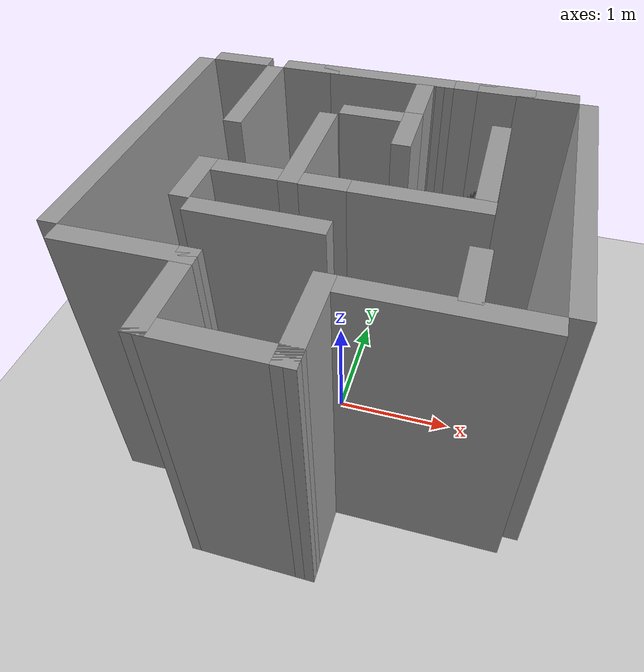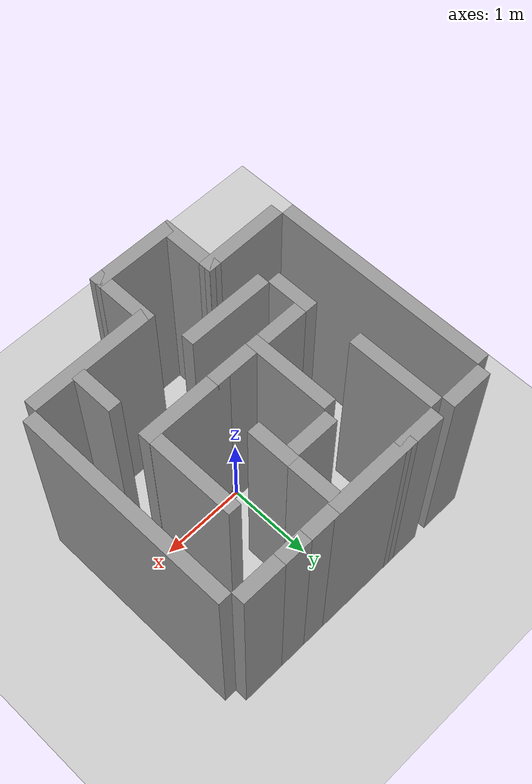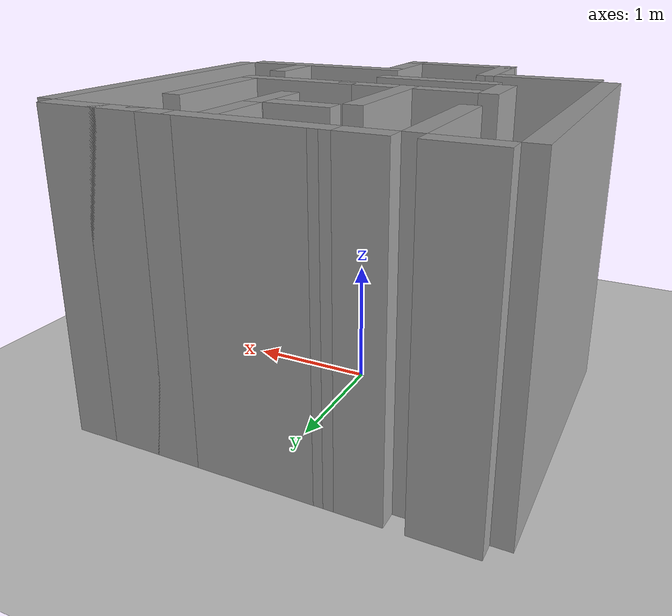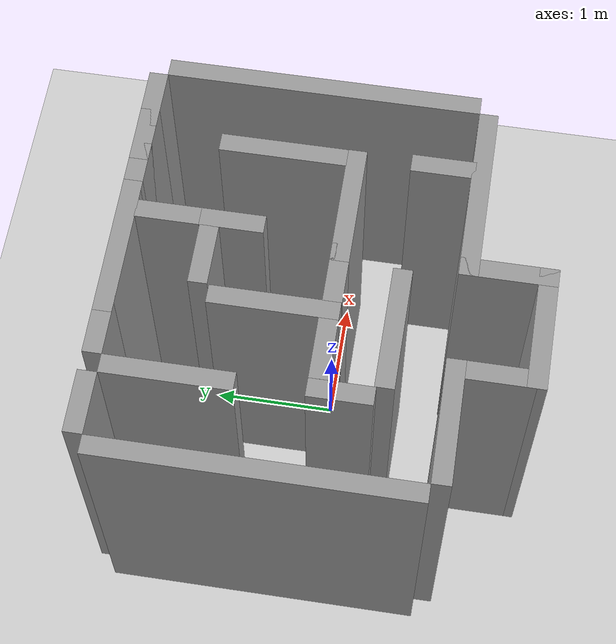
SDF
<?xml version="1.0"?>
<sdf version="1.6">
  <world name="default">

    <include>
      <uri>model://ground_plane</uri>
    </include>

    <include>
      <uri>model://sun</uri>
    </include>

    <scene>
      <shadows>false</shadows>
    </scene>

    <gui fullscreen='0'>
      <camera name='user_camera'>
        <pose frame=''>0.319654 -0.235002 9.29441 0 1.5138 0.009599</pose>
        <view_controller>orbit</view_controller>
        <projection_type>perspective</projection_type>
      </camera>
    </gui>

    <physics type="ode">
      <real_time_update_rate>1000.0</real_time_update_rate>
      <max_step_size>0.001</max_step_size>
      <real_time_factor>1</real_time_factor>
      <ode>
        <solver>
          <type>quick</type>
          <iters>150</iters>
          <precon_iters>0</precon_iters>
          <sor>1.400000</sor>
          <use_dynamic_moi_rescaling>1</use_dynamic_moi_rescaling>
        </solver>
        <constraints>
          <cfm>0.00001</cfm>
          <erp>0.2</erp>
          <contact_max_correcting_vel>2000.000000</contact_max_correcting_vel>
          <contact_surface_layer>0.01000</contact_surface_layer>
        </constraints>
      </ode>
    </physics>

    <model name="turtlebot3_world">
      <static>1</static>
      <include>
        <uri>model://assmaze</uri>
      </include>
    </model>

  </world>
</sdf>

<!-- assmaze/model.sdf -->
<sdf version='1.7'>
  <model name='assmaze'>
    <pose>-0.017206 0.018341 0 0 -0 0</pose>
    <link name='Wall_11'>
      <collision name='Wall_11_Collision'>
        <geometry>
          <box>
            <size>0.5 0.15 2.5</size>
          </box>
        </geometry>
        <pose>0 0 1.25 0 -0 0</pose>
      </collision>
      <visual name='Wall_11_Visual'>
        <pose>0 0 1.25 0 -0 0</pose>
        <geometry>
          <box>
            <size>0.5 0.15 2.5</size>
          </box>
        </geometry>
        <material>
          <script>
            <uri>file://media/materials/scripts/gazebo.material</uri>
            <name>Gazebo/Grey</name>
          </script>
          <ambient>1 1 1 1</ambient>
        </material>
        <meta>
          <layer>0</layer>
        </meta>
      </visual>
      <pose>-0.68782 1.62268 0 0 -0 0</pose>
    </link>
    <link name='Wall_13'>
      <collision name='Wall_13_Collision'>
        <geometry>
          <box>
            <size>0.5 0.15 2.5</size>
          </box>
        </geometry>
        <pose>0 0 1.25 0 -0 0</pose>
      </collision>
      <visual name='Wall_13_Visual'>
        <pose>0 0 1.25 0 -0 0</pose>
        <geometry>
          <box>
            <size>0.5 0.15 2.5</size>
          </box>
        </geometry>
        <material>
          <script>
            <uri>file://media/materials/scripts/gazebo.material</uri>
            <name>Gazebo/Grey</name>
          </script>
          <ambient>1 1 1 1</ambient>
        </material>
        <meta>
          <layer>0</layer>
        </meta>
      </visual>
      <pose>0.668086 1.62226 0 0 -0 0</pose>
    </link>
    <link name='Wall_15'>
      <collision name='Wall_15_Collision'>
        <geometry>
          <box>
            <size>0.5 0.15 2.5</size>
          </box>
        </geometry>
        <pose>0 0 1.25 0 -0 0</pose>
      </collision>
      <visual name='Wall_15_Visual'>
        <pose>0 0 1.25 0 -0 0</pose>
        <geometry>
          <box>
            <size>0.5 0.15 2.5</size>
          </box>
        </geometry>
        <material>
          <script>
            <uri>file://media/materials/scripts/gazebo.material</uri>
            <name>Gazebo/Grey</name>
          </script>
          <ambient>1 1 1 1</ambient>
        </material>
        <meta>
          <layer>0</layer>
        </meta>
      </visual>
      <pose>0.327442 1.3034 0 0 -0 -1.5708</pose>
    </link>
    <link name='Wall_17'>
      <collision name='Wall_17_Collision'>
        <geometry>
          <box>
            <size>0.5 0.15 2.5</size>
          </box>
        </geometry>
        <pose>0 0 1.25 0 -0 0</pose>
      </collision>
      <visual name='Wall_17_Visual'>
        <pose>0 0 1.25 0 -0 0</pose>
        <geometry>
          <box>
            <size>0.5 0.15 2.5</size>
          </box>
        </geometry>
        <material>
          <script>
            <uri>file://media/materials/scripts/gazebo.material</uri>
            <name>Gazebo/Grey</name>
          </script>
          <ambient>1 1 1 1</ambient>
        </material>
        <meta>
          <layer>0</layer>
        </meta>
      </visual>
      <pose>0.005043 0.970089 0 0 -0 3.14159</pose>
    </link>
    <link name='Wall_19'>
      <collision name='Wall_19_Collision'>
        <geometry>
          <box>
            <size>0.5 0.15 2.5</size>
          </box>
        </geometry>
        <pose>0 0 1.25 0 -0 0</pose>
      </collision>
      <visual name='Wall_19_Visual'>
        <pose>0 0 1.25 0 -0 0</pose>
        <geometry>
          <box>
            <size>0.5 0.15 2.5</size>
          </box>
        </geometry>
        <material>
          <script>
            <uri>file://media/materials/scripts/gazebo.material</uri>
            <name>Gazebo/Grey</name>
          </script>
          <ambient>1 1 1 1</ambient>
        </material>
        <meta>
          <layer>0</layer>
        </meta>
      </visual>
      <pose>0.327869 0.803785 0 0 -0 -1.5708</pose>
    </link>
    <link name='Wall_2'>
      <collision name='Wall_2_Collision'>
        <geometry>
          <box>
            <size>0.5 0.15 2.5</size>
          </box>
        </geometry>
        <pose>0 0 1.25 0 -0 0</pose>
      </collision>
      <visual name='Wall_2_Visual'>
        <pose>0 0 1.25 0 -0 0</pose>
        <geometry>
          <box>
            <size>0.5 0.15 2.5</size>
          </box>
        </geometry>
        <material>
          <script>
            <uri>file://media/materials/scripts/gazebo.material</uri>
            <name>Gazebo/Grey</name>
          </script>
          <ambient>1 1 1 1</ambient>
        </material>
        <meta>
          <layer>0</layer>
        </meta>
      </visual>
      <pose>-1.33617 1.62253 0 0 -0 0</pose>
    </link>
    <link name='Wall_21'>
      <collision name='Wall_21_Collision'>
        <geometry>
          <box>
            <size>2.5 0.15 2.5</size>
          </box>
        </geometry>
        <pose>0 0 1.25 0 -0 0</pose>
      </collision>
      <visual name='Wall_21_Visual'>
        <pose>0 0 1.25 0 -0 0</pose>
        <geometry>
          <box>
            <size>2.5 0.15 2.5</size>
          </box>
        </geometry>
        <material>
          <script>
            <uri>file://media/materials/scripts/gazebo.material</uri>
            <name>Gazebo/Grey</name>
          </script>
          <ambient>1 1 1 1</ambient>
        </material>
        <meta>
          <layer>0</layer>
        </meta>
      </visual>
      <pose>1.66156 0.30085 0 0 -0 -1.5708</pose>
    </link>
    <link name='Wall_23'>
      <collision name='Wall_23_Collision'>
        <geometry>
          <box>
            <size>1 0.15 2.5</size>
          </box>
        </geometry>
        <pose>0 0 1.25 0 -0 0</pose>
      </collision>
      <visual name='Wall_23_Visual'>
        <pose>0 0 1.25 0 -0 0</pose>
        <geometry>
          <box>
            <size>1 0.15 2.5</size>
          </box>
        </geometry>
        <material>
          <script>
            <uri>file://media/materials/scripts/gazebo.material</uri>
            <name>Gazebo/Grey</name>
          </script>
          <ambient>1 1 1 1</ambient>
        </material>
        <meta>
          <layer>0</layer>
        </meta>
      </visual>
      <pose>-0.324305 0.379872 0 0 -0 -1.5708</pose>
    </link>
    <link name='Wall_25'>
      <collision name='Wall_25_Collision'>
        <geometry>
          <box>
            <size>0.5 0.15 2.5</size>
          </box>
        </geometry>
        <pose>0 0 1.25 0 -0 0</pose>
      </collision>
      <visual name='Wall_25_Visual'>
        <pose>0 0 1.25 0 -0 0</pose>
        <geometry>
          <box>
            <size>0.5 0.15 2.5</size>
          </box>
        </geometry>
        <material>
          <script>
            <uri>file://media/materials/scripts/gazebo.material</uri>
            <name>Gazebo/Grey</name>
          </script>
          <ambient>1 1 1 1</ambient>
        </material>
        <meta>
          <layer>0</layer>
        </meta>
      </visual>
      <pose>1.05534 -0.724843 0 0 -0 -1.5708</pose>
    </link>
    <link name='Wall_27'>
      <collision name='Wall_27_Collision'>
        <geometry>
          <box>
            <size>0.5 0.15 2.5</size>
          </box>
        </geometry>
        <pose>0 0 1.25 0 -0 0</pose>
      </collision>
      <visual name='Wall_27_Visual'>
        <pose>0 0 1.25 0 -0 0</pose>
        <geometry>
          <box>
            <size>0.5 0.15 2.5</size>
          </box>
        </geometry>
        <material>
          <script>
            <uri>file://media/materials/scripts/gazebo.material</uri>
            <name>Gazebo/Grey</name>
          </script>
          <ambient>1 1 1 1</ambient>
        </material>
        <meta>
          <layer>0</layer>
        </meta>
      </visual>
      <pose>-0.973876 -0.21926 0 0 -0 -1.5708</pose>
    </link>
    <link name='Wall_30'>
      <collision name='Wall_30_Collision'>
        <geometry>
          <box>
            <size>0.5 0.15 2.5</size>
          </box>
        </geometry>
        <pose>0 0 1.25 0 -0 0</pose>
      </collision>
      <visual name='Wall_30_Visual'>
        <pose>0 0 1.25 0 -0 0</pose>
        <geometry>
          <box>
            <size>0.5 0.15 2.5</size>
          </box>
        </geometry>
        <material>
          <script>
            <uri>file://media/materials/scripts/gazebo.material</uri>
            <name>Gazebo/Grey</name>
          </script>
          <ambient>1 1 1 1</ambient>
        </material>
        <meta>
          <layer>0</layer>
        </meta>
      </visual>
      <pose>-0.648802 -0.04426 0 0 -0 0</pose>
    </link>
    <link name='Wall_32'>
      <collision name='Wall_32_Collision'>
        <geometry>
          <box>
            <size>1 0.15 2.5</size>
          </box>
        </geometry>
        <pose>0 0 1.25 0 -0 0</pose>
      </collision>
      <visual name='Wall_32_Visual'>
        <pose>0 0 1.25 0 -0 0</pose>
        <geometry>
          <box>
            <size>1 0.15 2.5</size>
          </box>
        </geometry>
        <material>
          <script>
            <uri>file://media/materials/scripts/gazebo.material</uri>
            <name>Gazebo/Grey</name>
          </script>
          <ambient>1 1 1 1</ambient>
        </material>
        <meta>
          <layer>0</layer>
        </meta>
      </visual>
      <pose>1.0216 0.522935 0 0 -0 -1.5708</pose>
    </link>
    <link name='Wall_34'>
      <collision name='Wall_34_Collision'>
        <geometry>
          <box>
            <size>0.5 0.15 2.5</size>
          </box>
        </geometry>
        <pose>0 0 1.25 0 -0 0</pose>
      </collision>
      <visual name='Wall_34_Visual'>
        <pose>0 0 1.25 0 -0 0</pose>
        <geometry>
          <box>
            <size>0.5 0.15 2.5</size>
          </box>
        </geometry>
        <material>
          <script>
            <uri>file://media/materials/scripts/gazebo.material</uri>
            <name>Gazebo/Grey</name>
          </script>
          <ambient>1 1 1 1</ambient>
        </material>
        <meta>
          <layer>0</layer>
        </meta>
      </visual>
      <pose>1.33765 1.62226 0 0 -0 0</pose>
    </link>
    <link name='Wall_38'>
      <collision name='Wall_38_Collision'>
        <geometry>
          <box>
            <size>0.5 0.15 2.5</size>
          </box>
        </geometry>
        <pose>0 0 1.25 0 -0 0</pose>
      </collision>
      <visual name='Wall_38_Visual'>
        <pose>0 0 1.25 0 -0 0</pose>
        <geometry>
          <box>
            <size>0.5 0.15 2.5</size>
          </box>
        </geometry>
        <material>
          <script>
            <uri>file://media/materials/scripts/gazebo.material</uri>
            <name>Gazebo/Grey</name>
          </script>
          <ambient>1 1 1 1</ambient>
        </material>
        <meta>
          <layer>0</layer>
        </meta>
      </visual>
      <pose>-0.001263 -0.049363 0 0 -0 0</pose>
    </link>
    <link name='Wall_40'>
      <collision name='Wall_40_Collision'>
        <geometry>
          <box>
            <size>0.469565 0.15 2.5</size>
          </box>
        </geometry>
        <pose>0 0 1.25 0 -0 0</pose>
      </collision>
      <visual name='Wall_40_Visual'>
        <pose>0 0 1.25 0 -0 0</pose>
        <geometry>
          <box>
            <size>0.469565 0.15 2.5</size>
          </box>
        </geometry>
        <material>
          <script>
            <uri>file://media/materials/scripts/gazebo.material</uri>
            <name>Gazebo/Grey</name>
          </script>
          <ambient>1 1 1 1</ambient>
        </material>
        <meta>
          <layer>0</layer>
        </meta>
      </visual>
      <pose>1.00287 1.62226 0 0 -0 0</pose>
    </link>
    <link name='Wall_43'>
      <collision name='Wall_43_Collision'>
        <geometry>
          <box>
            <size>1 0.15 2.5</size>
          </box>
        </geometry>
        <pose>0 0 1.25 0 -0 0</pose>
      </collision>
      <visual name='Wall_43_Visual'>
        <pose>0 0 1.25 0 -0 0</pose>
        <geometry>
          <box>
            <size>1 0.15 2.5</size>
          </box>
        </geometry>
        <material>
          <script>
            <uri>file://media/materials/scripts/gazebo.material</uri>
            <name>Gazebo/Grey</name>
          </script>
          <ambient>1 1 1 1</ambient>
        </material>
        <meta>
          <layer>0</layer>
        </meta>
      </visual>
      <pose>-0.398392 -0.530608 0 0 -0 -0.006493</pose>
    </link>
    <link name='Wall_45'>
      <collision name='Wall_45_Collision'>
        <geometry>
          <box>
            <size>1 0.15 2.5</size>
          </box>
        </geometry>
        <pose>0 0 1.25 0 -0 0</pose>
      </collision>
      <visual name='Wall_45_Visual'>
        <pose>0 0 1.25 0 -0 0</pose>
        <geometry>
          <box>
            <size>1 0.15 2.5</size>
          </box>
        </geometry>
        <material>
          <script>
            <uri>file://media/materials/scripts/gazebo.material</uri>
            <name>Gazebo/Grey</name>
          </script>
          <ambient>1 1 1 1</ambient>
        </material>
        <meta>
          <layer>0</layer>
        </meta>
      </visual>
      <pose>0.598737 -0.049363 0 0 -0 0</pose>
    </link>
    <link name='Wall_47'>
      <collision name='Wall_47_Collision'>
        <geometry>
          <box>
            <size>1.46712 0.15 2.5</size>
          </box>
        </geometry>
        <pose>0 0 1.25 0 -0 0</pose>
      </collision>
      <visual name='Wall_47_Visual'>
        <pose>0 0 1.25 0 -0 0</pose>
        <geometry>
          <box>
            <size>1.46712 0.15 2.5</size>
          </box>
        </geometry>
        <material>
          <script>
            <uri>file://media/materials/scripts/gazebo.material</uri>
            <name>Gazebo/Grey</name>
          </script>
          <ambient>1 1 1 1</ambient>
        </material>
        <meta>
          <layer>0</layer>
        </meta>
      </visual>
      <pose>0.856324 -1.02222 0 0 -0 3.14159</pose>
    </link>
    <link name='Wall_5'>
      <collision name='Wall_5_Collision'>
        <geometry>
          <box>
            <size>2.5 0.15 2.5</size>
          </box>
        </geometry>
        <pose>0 0 1.25 0 -0 0</pose>
      </collision>
      <visual name='Wall_5_Visual'>
        <pose>0 0 1.25 0 -0 0</pose>
        <geometry>
          <box>
            <size>2.5 0.15 2.5</size>
          </box>
        </geometry>
        <material>
          <script>
            <uri>file://media/materials/scripts/gazebo.material</uri>
            <name>Gazebo/Grey</name>
          </script>
          <ambient>1 1 1 1</ambient>
        </material>
        <meta>
          <layer>0</layer>
        </meta>
      </visual>
      <pose>-1.66156 0.299897 0 0 -0 -1.5708</pose>
    </link>
    <link name='Wall_53'>
      <collision name='Wall_53_Collision'>
        <geometry>
          <box>
            <size>1.15591 0.15 2.5</size>
          </box>
        </geometry>
        <pose>0 0 1.25 0 -0 0</pose>
      </collision>
      <visual name='Wall_53_Visual'>
        <pose>0 0 1.25 0 -0 0</pose>
        <geometry>
          <box>
            <size>1.15591 0.15 2.5</size>
          </box>
        </geometry>
        <material>
          <script>
            <uri>file://media/materials/scripts/gazebo.material</uri>
            <name>Gazebo/Grey</name>
          </script>
          <ambient>1 1 1 1</ambient>
        </material>
        <meta>
          <layer>0</layer>
        </meta>
      </visual>
      <pose>-0.009867 1.62247 0 0 -0 -0.00042</pose>
    </link>
    <link name='Wall_55'>
      <collision name='Wall_55_Collision'>
        <geometry>
          <box>
            <size>0.75 0.15 2.5</size>
          </box>
        </geometry>
        <pose>0 0 1.25 0 -0 0</pose>
      </collision>
      <visual name='Wall_55_Visual'>
        <pose>0 0 1.25 0 -0 0</pose>
        <geometry>
          <box>
            <size>0.75 0.15 2.5</size>
          </box>
        </geometry>
        <material>
          <script>
            <uri>file://media/materials/scripts/gazebo.material</uri>
            <name>Gazebo/Grey</name>
          </script>
          <ambient>1 1 1 1</ambient>
        </material>
        <meta>
          <layer>0</layer>
        </meta>
      </visual>
      <pose>-0.660757 -1.31658 0 0 -0 -1.5708</pose>
    </link>
    <link name='Wall_59'>
      <collision name='Wall_59_Collision'>
        <geometry>
          <box>
            <size>0.75 0.15 2.5</size>
          </box>
        </geometry>
        <pose>0 0 1.25 0 -0 0</pose>
      </collision>
      <visual name='Wall_59_Visual'>
        <pose>0 0 1.25 0 -0 0</pose>
        <geometry>
          <box>
            <size>0.75 0.15 2.5</size>
          </box>
        </geometry>
        <material>
          <script>
            <uri>file://media/materials/scripts/gazebo.material</uri>
            <name>Gazebo/Grey</name>
          </script>
          <ambient>1 1 1 1</ambient>
        </material>
        <meta>
          <layer>0</layer>
        </meta>
      </visual>
      <pose>0.197762 -1.32222 0 0 -0 -1.5708</pose>
    </link>
    <link name='Wall_60'>
      <collision name='Wall_60_Collision'>
        <geometry>
          <box>
            <size>1.00854 0.15 2.5</size>
          </box>
        </geometry>
        <pose>0 0 1.25 0 -0 0</pose>
      </collision>
      <visual name='Wall_60_Visual'>
        <pose>0 0 1.25 0 -0 0</pose>
        <geometry>
          <box>
            <size>1.00854 0.15 2.5</size>
          </box>
        </geometry>
        <material>
          <script>
            <uri>file://media/materials/scripts/gazebo.material</uri>
            <name>Gazebo/Grey</name>
          </script>
          <ambient>1 1 1 1</ambient>
        </material>
        <meta>
          <layer>0</layer>
        </meta>
      </visual>
      <pose>-0.231497 -1.6194 0 0 -0 3.13502</pose>
    </link>
    <link name='Wall_7'>
      <collision name='Wall_7_Collision'>
        <geometry>
          <box>
            <size>1 0.15 2.5</size>
          </box>
        </geometry>
        <pose>0 0 1.25 0 -0 0</pose>
      </collision>
      <visual name='Wall_7_Visual'>
        <pose>0 0 1.25 0 -0 0</pose>
        <geometry>
          <box>
            <size>1 0.15 2.5</size>
          </box>
        </geometry>
        <material>
          <script>
            <uri>file://media/materials/scripts/gazebo.material</uri>
            <name>Gazebo/Grey</name>
          </script>
          <ambient>1 1 1 1</ambient>
        </material>
        <meta>
          <layer>0</layer>
        </meta>
      </visual>
      <pose>-1.08574 -1.01975 0 0 -0 0.007463</pose>
    </link>
    <link name='Wall_9'>
      <collision name='Wall_9_Collision'>
        <geometry>
          <box>
            <size>1 0.15 2.5</size>
          </box>
        </geometry>
        <pose>0 0 1.25 0 -0 0</pose>
      </collision>
      <visual name='Wall_9_Visual'>
        <pose>0 0 1.25 0 -0 0</pose>
        <geometry>
          <box>
            <size>1 0.15 2.5</size>
          </box>
        </geometry>
        <material>
          <script>
            <uri>file://media/materials/scripts/gazebo.material</uri>
            <name>Gazebo/Grey</name>
          </script>
          <ambient>1 1 1 1</ambient>
        </material>
        <meta>
          <layer>0</layer>
        </meta>
      </visual>
      <pose>-1.01126 1.04944 0 0 -0 -1.5708</pose>
    </link>
    <static>1</static>
  </model>
</sdf>
